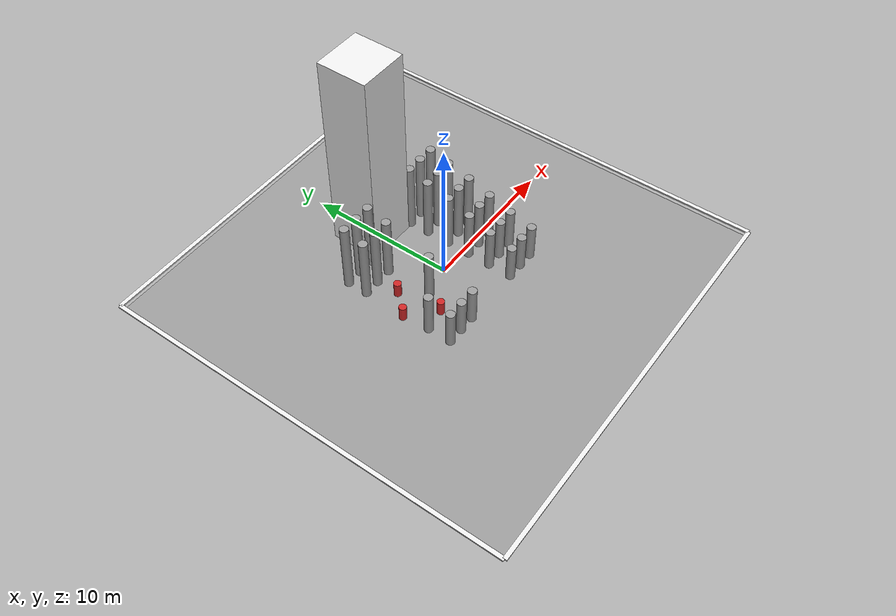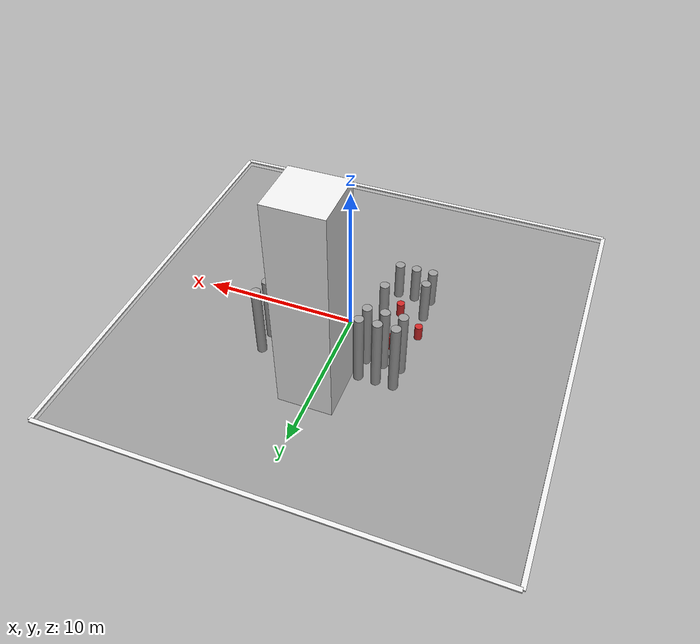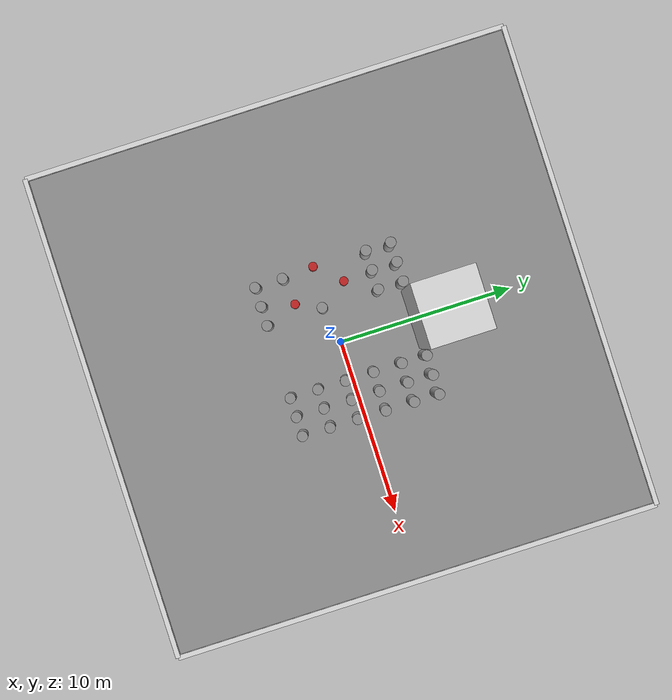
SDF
<?xml version="1.0"?>
<!-- Tour Hassan — grey fallback -->
<sdf version="1.6">
  <world name="hassan_rabat">

  <physics type="ode">
    <max_step_size>0.01</max_step_size>
    <real_time_factor>1</real_time_factor>
    <real_time_update_rate>100</real_time_update_rate>
    <ode>
      <solver><type>quick</type><iters>50</iters><sor>1.3</sor></solver>
      <constraints><cfm>0</cfm><erp>0.2</erp>
        <contact_max_correcting_vel>100</contact_max_correcting_vel>
        <contact_surface_layer>0.001</contact_surface_layer>
      </constraints>
    </ode>
  </physics>

  <scene>
    <ambient>0.88 0.90 0.95 1</ambient>
    <background>0.38 0.58 0.92 1</background>
    <shadows>false</shadows>
    <grid>false</grid>
    <sky>
      <time>14:00</time>
      <sunrise>6:30</sunrise>
      <sunset>19:30</sunset>
      <clouds>
        <speed>14</speed>
        <direction>0.7 0.15</direction>
        <humidity>0.72</humidity>
        <mean_size>5</mean_size>
        <ambient>0.92 0.94 1.0 1</ambient>
      </clouds>
    </sky>
  </scene>
  <light type="directional" name="sun_warm">
    <cast_shadows>false</cast_shadows>
    <diffuse>1.0 0.97 0.88 1</diffuse>
    <specular>0.15 0.12 0.08 1</specular>
    <direction>-0.35 0.12 -0.92</direction>
  </light>
  <light type="directional" name="sky_fill">
    <cast_shadows>false</cast_shadows>
    <diffuse>0.45 0.55 0.75 1</diffuse>
    <direction>0.1 -0.05 -1.0</direction>
  </light>

  <gui fullscreen='0'>
    <camera name='user_camera'>
      <pose>0.0 -10.0 6.5 0 0.45 1.57</pose>
      <view_controller>orbit</view_controller>
      <projection_type>perspective</projection_type>
    </camera>
  </gui>

  <model name="hassan_plaza"><static>true</static><pose>0 0 0 0 0 0</pose><link name="link"><collision name="c"><geometry><plane><normal>0 0 1</normal><size>28.0 28.0</size></plane></geometry><surface><friction><ode><mu>0.65</mu><mu2>0.65</mu2></ode></friction></surface></collision><visual name="paving"><geometry><plane><normal>0 0 1</normal><size>28.0 28.0</size></plane></geometry>
          <material><script><uri>file://media/materials/scripts/gazebo.material</uri><name>Gazebo/Grey</name></script></material>
</visual></link></model>

  <model name="wall_n"><static>true</static><pose>0 14.14 0.275 0 0 0</pose><link name="link"><collision name="c"><geometry><box><size>28.28 0.28 0.55</size></box></geometry></collision><visual name="v"><geometry><box><size>28.28 0.28 0.1</size></box></geometry>
          <material><script><uri>file://media/materials/scripts/gazebo.material</uri><name>Gazebo/White</name></script></material>
</visual></link></model>

  <model name="wall_s"><static>true</static><pose>0 -14.14 0.275 0 0 0</pose><link name="link"><collision name="c"><geometry><box><size>28.28 0.28 0.55</size></box></geometry></collision><visual name="v"><geometry><box><size>28.28 0.28 0.1</size></box></geometry>
          <material><script><uri>file://media/materials/scripts/gazebo.material</uri><name>Gazebo/White</name></script></material>
</visual></link></model>

  <model name="wall_e"><static>true</static><pose>14.14 0 0.275 0 0 0</pose><link name="link"><collision name="c"><geometry><box><size>0.28 28.28 0.55</size></box></geometry></collision><visual name="v"><geometry><box><size>0.28 28.28 0.1</size></box></geometry>
          <material><script><uri>file://media/materials/scripts/gazebo.material</uri><name>Gazebo/White</name></script></material>
</visual></link></model>

  <model name="wall_w"><static>true</static><pose>-14.14 0 0.275 0 0 0</pose><link name="link"><collision name="c"><geometry><box><size>0.28 28.28 0.55</size></box></geometry></collision><visual name="v"><geometry><box><size>0.28 28.28 0.1</size></box></geometry>
          <material><script><uri>file://media/materials/scripts/gazebo.material</uri><name>Gazebo/White</name></script></material>
</visual></link></model>

  <model name="hassan_mosque"><static>true</static><pose>0 5.8 0 0 0 0</pose><link name="link"><collision name="c"><pose>0 0 7.0 0 0 0</pose><geometry><box><size>3.4 3.4 14.0</size></box></geometry></collision><visual name="tower"><pose>0 0 7.0 0 0 0</pose><geometry><box><size>3.4 3.4 14.0</size></box></geometry>
          <material><script><uri>file://media/materials/scripts/gazebo.material</uri><name>Gazebo/White</name></script></material>
</visual></link></model>

  <model name="p_0"><static>true</static><pose>-4.3 -3.6 1.3 0 0 0</pose><link name="link"><collision name="c"><geometry><cylinder><radius>0.3</radius><length>2.6</length></cylinder></geometry></collision><visual name="v"><geometry><cylinder><radius>0.3</radius><length>2.6</length></cylinder></geometry>
          <material><script><uri>file://media/materials/scripts/gazebo.material</uri><name>Gazebo/Grey</name></script></material>
</visual></link></model>

  <model name="p_1"><static>true</static><pose>-3.2 -3.6 1.3 0 0 0</pose><link name="link"><collision name="c"><geometry><cylinder><radius>0.3</radius><length>2.6</length></cylinder></geometry></collision><visual name="v"><geometry><cylinder><radius>0.3</radius><length>2.6</length></cylinder></geometry>
          <material><script><uri>file://media/materials/scripts/gazebo.material</uri><name>Gazebo/Grey</name></script></material>
</visual></link></model>

  <model name="p_2"><static>true</static><pose>-2.1 -3.6 1.3 0 0 0</pose><link name="link"><collision name="c"><geometry><cylinder><radius>0.3</radius><length>2.6</length></cylinder></geometry></collision><visual name="v"><geometry><cylinder><radius>0.3</radius><length>2.6</length></cylinder></geometry>
          <material><script><uri>file://media/materials/scripts/gazebo.material</uri><name>Gazebo/Grey</name></script></material>
</visual></link></model>

  <model name="p_3"><static>true</static><pose>2.1 -3.6 1.3 0 0 0</pose><link name="link"><collision name="c"><geometry><cylinder><radius>0.3</radius><length>2.6</length></cylinder></geometry></collision><visual name="v"><geometry><cylinder><radius>0.3</radius><length>2.6</length></cylinder></geometry>
          <material><script><uri>file://media/materials/scripts/gazebo.material</uri><name>Gazebo/Grey</name></script></material>
</visual></link></model>

  <model name="p_4"><static>true</static><pose>3.2 -3.6 1.3 0 0 0</pose><link name="link"><collision name="c"><geometry><cylinder><radius>0.3</radius><length>2.6</length></cylinder></geometry></collision><visual name="v"><geometry><cylinder><radius>0.3</radius><length>2.6</length></cylinder></geometry>
          <material><script><uri>file://media/materials/scripts/gazebo.material</uri><name>Gazebo/Grey</name></script></material>
</visual></link></model>

  <model name="p_5"><static>true</static><pose>4.3 -3.6 1.3 0 0 0</pose><link name="link"><collision name="c"><geometry><cylinder><radius>0.3</radius><length>2.6</length></cylinder></geometry></collision><visual name="v"><geometry><cylinder><radius>0.3</radius><length>2.6</length></cylinder></geometry>
          <material><script><uri>file://media/materials/scripts/gazebo.material</uri><name>Gazebo/Grey</name></script></material>
</visual></link></model>

  <model name="p_6"><static>true</static><pose>-4.3 -2.0 1.5 0 0 0</pose><link name="link"><collision name="c"><geometry><cylinder><radius>0.3</radius><length>3.0</length></cylinder></geometry></collision><visual name="v"><geometry><cylinder><radius>0.3</radius><length>3.0</length></cylinder></geometry>
          <material><script><uri>file://media/materials/scripts/gazebo.material</uri><name>Gazebo/Grey</name></script></material>
</visual></link></model>

  <model name="p_7"><static>true</static><pose>2.1 -2.0 1.5 0 0 0</pose><link name="link"><collision name="c"><geometry><cylinder><radius>0.3</radius><length>3.0</length></cylinder></geometry></collision><visual name="v"><geometry><cylinder><radius>0.3</radius><length>3.0</length></cylinder></geometry>
          <material><script><uri>file://media/materials/scripts/gazebo.material</uri><name>Gazebo/Grey</name></script></material>
</visual></link></model>

  <model name="p_8"><static>true</static><pose>3.2 -2.0 1.5 0 0 0</pose><link name="link"><collision name="c"><geometry><cylinder><radius>0.3</radius><length>3.0</length></cylinder></geometry></collision><visual name="v"><geometry><cylinder><radius>0.3</radius><length>3.0</length></cylinder></geometry>
          <material><script><uri>file://media/materials/scripts/gazebo.material</uri><name>Gazebo/Grey</name></script></material>
</visual></link></model>

  <model name="p_9"><static>true</static><pose>4.3 -2.0 1.5 0 0 0</pose><link name="link"><collision name="c"><geometry><cylinder><radius>0.3</radius><length>3.0</length></cylinder></geometry></collision><visual name="v"><geometry><cylinder><radius>0.3</radius><length>3.0</length></cylinder></geometry>
          <material><script><uri>file://media/materials/scripts/gazebo.material</uri><name>Gazebo/Grey</name></script></material>
</visual></link></model>

  <model name="p_10"><static>true</static><pose>-2.1 -0.4 1.77 0 0 0</pose><link name="link"><collision name="c"><geometry><cylinder><radius>0.3</radius><length>3.55</length></cylinder></geometry></collision><visual name="v"><geometry><cylinder><radius>0.3</radius><length>3.55</length></cylinder></geometry>
          <material><script><uri>file://media/materials/scripts/gazebo.material</uri><name>Gazebo/Grey</name></script></material>
</visual></link></model>

  <model name="p_11"><static>true</static><pose>2.1 -0.4 1.77 0 0 0</pose><link name="link"><collision name="c"><geometry><cylinder><radius>0.3</radius><length>3.55</length></cylinder></geometry></collision><visual name="v"><geometry><cylinder><radius>0.3</radius><length>3.55</length></cylinder></geometry>
          <material><script><uri>file://media/materials/scripts/gazebo.material</uri><name>Gazebo/Grey</name></script></material>
</visual></link></model>

  <model name="p_12"><static>true</static><pose>3.2 -0.4 1.77 0 0 0</pose><link name="link"><collision name="c"><geometry><cylinder><radius>0.3</radius><length>3.55</length></cylinder></geometry></collision><visual name="v"><geometry><cylinder><radius>0.3</radius><length>3.55</length></cylinder></geometry>
          <material><script><uri>file://media/materials/scripts/gazebo.material</uri><name>Gazebo/Grey</name></script></material>
</visual></link></model>

  <model name="p_13"><static>true</static><pose>4.3 -0.4 1.77 0 0 0</pose><link name="link"><collision name="c"><geometry><cylinder><radius>0.3</radius><length>3.55</length></cylinder></geometry></collision><visual name="v"><geometry><cylinder><radius>0.3</radius><length>3.55</length></cylinder></geometry>
          <material><script><uri>file://media/materials/scripts/gazebo.material</uri><name>Gazebo/Grey</name></script></material>
</visual></link></model>

  <model name="p_14"><static>true</static><pose>2.1 1.2 2.05 0 0 0</pose><link name="link"><collision name="c"><geometry><cylinder><radius>0.3</radius><length>4.1</length></cylinder></geometry></collision><visual name="v"><geometry><cylinder><radius>0.3</radius><length>4.1</length></cylinder></geometry>
          <material><script><uri>file://media/materials/scripts/gazebo.material</uri><name>Gazebo/Grey</name></script></material>
</visual></link></model>

  <model name="p_15"><static>true</static><pose>3.2 1.2 2.05 0 0 0</pose><link name="link"><collision name="c"><geometry><cylinder><radius>0.3</radius><length>4.1</length></cylinder></geometry></collision><visual name="v"><geometry><cylinder><radius>0.3</radius><length>4.1</length></cylinder></geometry>
          <material><script><uri>file://media/materials/scripts/gazebo.material</uri><name>Gazebo/Grey</name></script></material>
</visual></link></model>

  <model name="p_16"><static>true</static><pose>4.3 1.2 2.05 0 0 0</pose><link name="link"><collision name="c"><geometry><cylinder><radius>0.3</radius><length>4.1</length></cylinder></geometry></collision><visual name="v"><geometry><cylinder><radius>0.3</radius><length>4.1</length></cylinder></geometry>
          <material><script><uri>file://media/materials/scripts/gazebo.material</uri><name>Gazebo/Grey</name></script></material>
</visual></link></model>

  <model name="p_17"><static>true</static><pose>-4.3 2.8 2.25 0 0 0</pose><link name="link"><collision name="c"><geometry><cylinder><radius>0.3</radius><length>4.5</length></cylinder></geometry></collision><visual name="v"><geometry><cylinder><radius>0.3</radius><length>4.5</length></cylinder></geometry>
          <material><script><uri>file://media/materials/scripts/gazebo.material</uri><name>Gazebo/Grey</name></script></material>
</visual></link></model>

  <model name="p_18"><static>true</static><pose>-3.2 2.8 2.25 0 0 0</pose><link name="link"><collision name="c"><geometry><cylinder><radius>0.3</radius><length>4.5</length></cylinder></geometry></collision><visual name="v"><geometry><cylinder><radius>0.3</radius><length>4.5</length></cylinder></geometry>
          <material><script><uri>file://media/materials/scripts/gazebo.material</uri><name>Gazebo/Grey</name></script></material>
</visual></link></model>

  <model name="p_19"><static>true</static><pose>-2.1 2.8 2.25 0 0 0</pose><link name="link"><collision name="c"><geometry><cylinder><radius>0.3</radius><length>4.5</length></cylinder></geometry></collision><visual name="v"><geometry><cylinder><radius>0.3</radius><length>4.5</length></cylinder></geometry>
          <material><script><uri>file://media/materials/scripts/gazebo.material</uri><name>Gazebo/Grey</name></script></material>
</visual></link></model>

  <model name="p_20"><static>true</static><pose>2.1 2.8 2.25 0 0 0</pose><link name="link"><collision name="c"><geometry><cylinder><radius>0.3</radius><length>4.5</length></cylinder></geometry></collision><visual name="v"><geometry><cylinder><radius>0.3</radius><length>4.5</length></cylinder></geometry>
          <material><script><uri>file://media/materials/scripts/gazebo.material</uri><name>Gazebo/Grey</name></script></material>
</visual></link></model>

  <model name="p_21"><static>true</static><pose>3.2 2.8 2.25 0 0 0</pose><link name="link"><collision name="c"><geometry><cylinder><radius>0.3</radius><length>4.5</length></cylinder></geometry></collision><visual name="v"><geometry><cylinder><radius>0.3</radius><length>4.5</length></cylinder></geometry>
          <material><script><uri>file://media/materials/scripts/gazebo.material</uri><name>Gazebo/Grey</name></script></material>
</visual></link></model>

  <model name="p_22"><static>true</static><pose>4.3 2.8 2.25 0 0 0</pose><link name="link"><collision name="c"><geometry><cylinder><radius>0.3</radius><length>4.5</length></cylinder></geometry></collision><visual name="v"><geometry><cylinder><radius>0.3</radius><length>4.5</length></cylinder></geometry>
          <material><script><uri>file://media/materials/scripts/gazebo.material</uri><name>Gazebo/Grey</name></script></material>
</visual></link></model>

  <model name="p_23"><static>true</static><pose>-4.3 4.2 2.45 0 0 0</pose><link name="link"><collision name="c"><geometry><cylinder><radius>0.3</radius><length>4.9</length></cylinder></geometry></collision><visual name="v"><geometry><cylinder><radius>0.3</radius><length>4.9</length></cylinder></geometry>
          <material><script><uri>file://media/materials/scripts/gazebo.material</uri><name>Gazebo/Grey</name></script></material>
</visual></link></model>

  <model name="p_24"><static>true</static><pose>-3.2 4.2 2.45 0 0 0</pose><link name="link"><collision name="c"><geometry><cylinder><radius>0.3</radius><length>4.9</length></cylinder></geometry></collision><visual name="v"><geometry><cylinder><radius>0.3</radius><length>4.9</length></cylinder></geometry>
          <material><script><uri>file://media/materials/scripts/gazebo.material</uri><name>Gazebo/Grey</name></script></material>
</visual></link></model>

  <model name="p_25"><static>true</static><pose>-2.1 4.2 2.45 0 0 0</pose><link name="link"><collision name="c"><geometry><cylinder><radius>0.3</radius><length>4.9</length></cylinder></geometry></collision><visual name="v"><geometry><cylinder><radius>0.3</radius><length>4.9</length></cylinder></geometry>
          <material><script><uri>file://media/materials/scripts/gazebo.material</uri><name>Gazebo/Grey</name></script></material>
</visual></link></model>

  <model name="p_26"><static>true</static><pose>2.1 4.2 2.45 0 0 0</pose><link name="link"><collision name="c"><geometry><cylinder><radius>0.3</radius><length>4.9</length></cylinder></geometry></collision><visual name="v"><geometry><cylinder><radius>0.3</radius><length>4.9</length></cylinder></geometry>
          <material><script><uri>file://media/materials/scripts/gazebo.material</uri><name>Gazebo/Grey</name></script></material>
</visual></link></model>

  <model name="p_27"><static>true</static><pose>3.2 4.2 2.45 0 0 0</pose><link name="link"><collision name="c"><geometry><cylinder><radius>0.3</radius><length>4.9</length></cylinder></geometry></collision><visual name="v"><geometry><cylinder><radius>0.3</radius><length>4.9</length></cylinder></geometry>
          <material><script><uri>file://media/materials/scripts/gazebo.material</uri><name>Gazebo/Grey</name></script></material>
</visual></link></model>

  <model name="p_28"><static>true</static><pose>4.3 4.2 2.45 0 0 0</pose><link name="link"><collision name="c"><geometry><cylinder><radius>0.3</radius><length>4.9</length></cylinder></geometry></collision><visual name="v"><geometry><cylinder><radius>0.3</radius><length>4.9</length></cylinder></geometry>
          <material><script><uri>file://media/materials/scripts/gazebo.material</uri><name>Gazebo/Grey</name></script></material>
</visual></link></model>

  <model name="wp1"><static>true</static><pose>-2.8 -1.8 0.5 0 0 0</pose><link name="link"><collision name="c"><geometry><cylinder><radius>0.25</radius><length>1.0</length></cylinder></geometry></collision><visual name="v"><geometry><cylinder><radius>0.25</radius><length>1.0</length></cylinder></geometry>
          <material><script><uri>file://media/materials/scripts/gazebo.material</uri><name>Gazebo/Red</name></script></material>
</visual></link></model>

  <model name="wp2"><static>true</static><pose>-4.5 -0.2 0.5 0 0 0</pose><link name="link"><collision name="c"><geometry><cylinder><radius>0.25</radius><length>1.0</length></cylinder></geometry></collision><visual name="v"><geometry><cylinder><radius>0.25</radius><length>1.0</length></cylinder></geometry>
          <material><script><uri>file://media/materials/scripts/gazebo.material</uri><name>Gazebo/Red</name></script></material>
</visual></link></model>

  <model name="wp3"><static>true</static><pose>-3.2 1.2 0.5 0 0 0</pose><link name="link"><collision name="c"><geometry><cylinder><radius>0.25</radius><length>1.0</length></cylinder></geometry></collision><visual name="v"><geometry><cylinder><radius>0.25</radius><length>1.0</length></cylinder></geometry>
          <material><script><uri>file://media/materials/scripts/gazebo.material</uri><name>Gazebo/Red</name></script></material>
</visual></link></model>

  </world>
</sdf>
